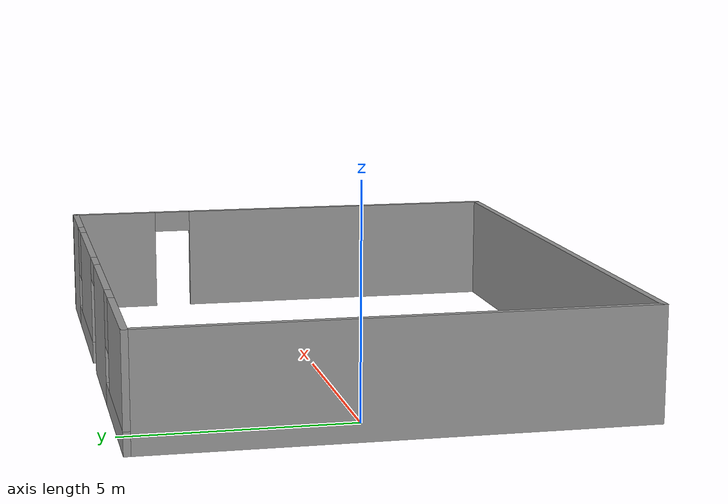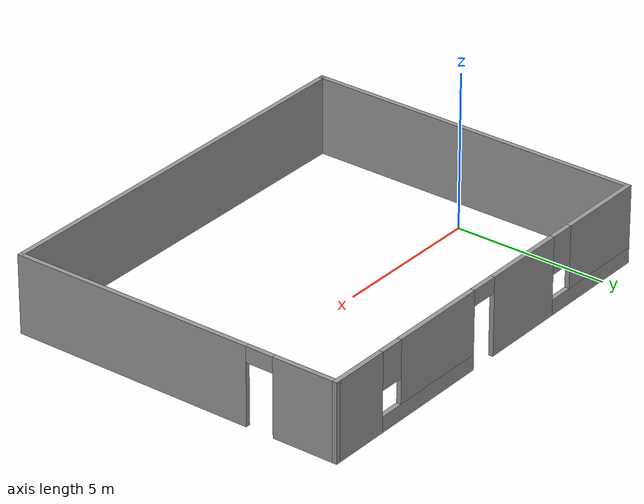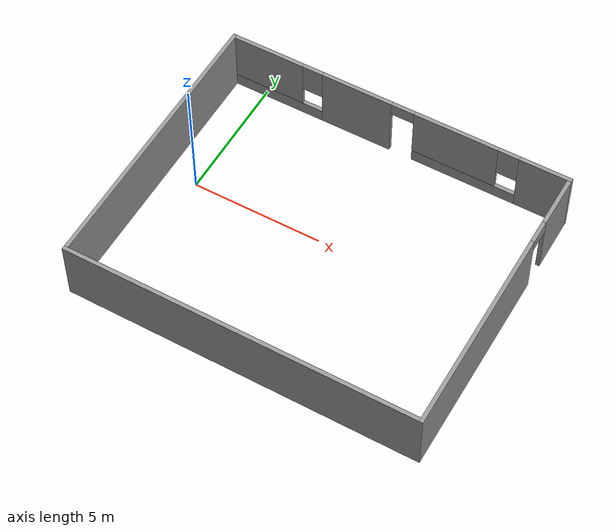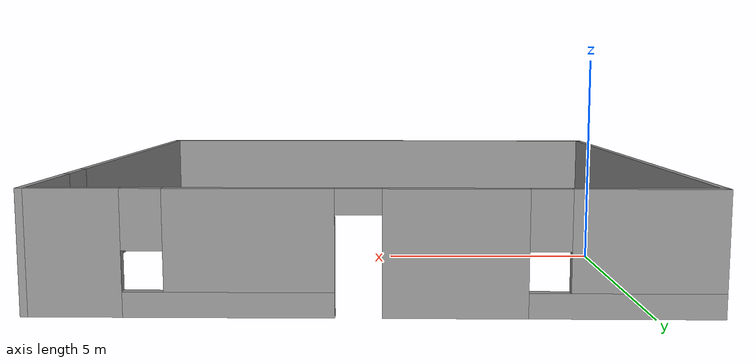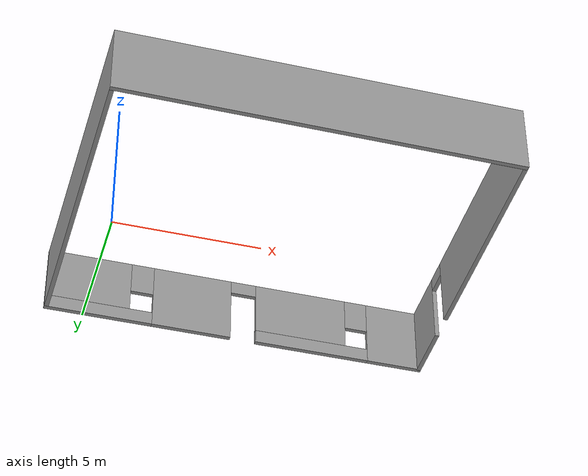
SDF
<?xml version='1.0'?>
<sdf version='1.7'>
  <model name='Multi-Door_building'>
    <pose>5.4101 -0.530281 0 0 -0 0</pose>
    <link name='Wall_5'>
      <collision name='Wall_5_Collision'>
        <geometry>
          <box>
            <size>11 0.15 2.5</size>
          </box>
        </geometry>
        <pose>0 0 1.25 0 -0 0</pose>
      </collision>
      <visual name='Wall_5_Visual'>
        <pose>0 0 1.25 0 -0 0</pose>
        <geometry>
          <box>
            <size>11 0.15 2.5</size>
          </box>
        </geometry>
        <material>
          <script>
            <uri>file://media/materials/scripts/gazebo.material</uri>
            <name>Gazebo/Grey</name>
          </script>
          <ambient>1 1 1 1</ambient>
        </material>
        <meta>
          <layer>0</layer>
        </meta>
      </visual>
      <pose>-6.675 -0 0 0 -0 -1.5708</pose>
    </link>
    <link name='Wall_6'>
      <collision name='Wall_6_Collision'>
        <geometry>
          <box>
            <size>13.5 0.15 2.5</size>
          </box>
        </geometry>
        <pose>0 0 1.25 0 -0 0</pose>
      </collision>
      <visual name='Wall_6_Visual'>
        <pose>0 0 1.25 0 -0 0</pose>
        <geometry>
          <box>
            <size>13.5 0.15 2.5</size>
          </box>
        </geometry>
        <material>
          <script>
            <uri>file://media/materials/scripts/gazebo.material</uri>
            <name>Gazebo/Grey</name>
          </script>
          <ambient>1 1 1 1</ambient>
        </material>
        <meta>
          <layer>0</layer>
        </meta>
      </visual>
      <pose>0 -5.425 0 0 -0 0</pose>
    </link>
    <link name='Wall_7'>
      <pose>6.675 -0 0 0 -0 1.5708</pose>
      <visual name='Wall_7_Visual_0'>
        <pose>-1.51662 0 1.25 0 -0 0</pose>
        <geometry>
          <box>
            <size>7.96675 0.15 2.5</size>
          </box>
        </geometry>
        <material>
          <script>
            <uri>file://media/materials/scripts/gazebo.material</uri>
            <name>Gazebo/Grey</name>
          </script>
          <ambient>1 1 1 1</ambient>
        </material>
        <meta>
          <layer>0</layer>
        </meta>
      </visual>
      <collision name='Wall_7_Collision_0'>
        <geometry>
          <box>
            <size>7.96675 0.15 2.5</size>
          </box>
        </geometry>
        <pose>-1.51662 0 1.25 0 -0 0</pose>
      </collision>
      <visual name='Wall_7_Visual_1'>
        <pose>4.43338 0 1.25 0 -0 0</pose>
        <geometry>
          <box>
            <size>2.13325 0.15 2.5</size>
          </box>
        </geometry>
        <material>
          <script>
            <uri>file://media/materials/scripts/gazebo.material</uri>
            <name>Gazebo/Grey</name>
          </script>
          <ambient>1 1 1 1</ambient>
        </material>
        <meta>
          <layer>0</layer>
        </meta>
      </visual>
      <collision name='Wall_7_Collision_1'>
        <geometry>
          <box>
            <size>2.13325 0.15 2.5</size>
          </box>
        </geometry>
        <pose>4.43338 0 1.25 0 -0 0</pose>
      </collision>
      <visual name='Wall_7_Visual_2'>
        <pose>2.91675 0 2.25 0 -0 0</pose>
        <geometry>
          <box>
            <size>0.9 0.15 0.5</size>
          </box>
        </geometry>
        <material>
          <script>
            <uri>file://media/materials/scripts/gazebo.material</uri>
            <name>Gazebo/Grey</name>
          </script>
          <ambient>1 1 1 1</ambient>
        </material>
        <meta>
          <layer>0</layer>
        </meta>
      </visual>
      <collision name='Wall_7_Collision_2'>
        <geometry>
          <box>
            <size>0.9 0.15 0.5</size>
          </box>
        </geometry>
        <pose>2.91675 0 2.25 0 -0 0</pose>
      </collision>
    </link>
    <link name='Wall_8'>
      <pose>0 5.425 0 0 -0 3.14159</pose>
      <visual name='Wall_8_Visual_0'>
        <pose>-5.75969 0 1.25 0 -0 0</pose>
        <geometry>
          <box>
            <size>1.98063 0.15 2.5</size>
          </box>
        </geometry>
        <material>
          <script>
            <uri>file://media/materials/scripts/gazebo.material</uri>
            <name>Gazebo/Grey</name>
          </script>
          <ambient>1 1 1 1</ambient>
        </material>
        <meta>
          <layer>0</layer>
        </meta>
      </visual>
      <collision name='Wall_8_Collision_0'>
        <geometry>
          <box>
            <size>1.98063 0.15 2.5</size>
          </box>
        </geometry>
        <pose>-5.75969 0 1.25 0 -0 0</pose>
      </collision>
      <visual name='Wall_8_Visual_1'>
        <pose>1.6026 0 1.25 0 -0 0</pose>
        <geometry>
          <box>
            <size>2.791 0.15 2.5</size>
          </box>
        </geometry>
        <material>
          <script>
            <uri>file://media/materials/scripts/gazebo.material</uri>
            <name>Gazebo/Grey</name>
          </script>
          <ambient>1 1 1 1</ambient>
        </material>
        <meta>
          <layer>0</layer>
        </meta>
      </visual>
      <collision name='Wall_8_Collision_1'>
        <geometry>
          <box>
            <size>2.791 0.15 2.5</size>
          </box>
        </geometry>
        <pose>1.6026 0 1.25 0 -0 0</pose>
      </collision>
      <visual name='Wall_8_Visual_2'>
        <pose>-2.73114 0 0.25 0 -0 0</pose>
        <geometry>
          <box>
            <size>4.07647 0.15 0.5</size>
          </box>
        </geometry>
        <material>
          <script>
            <uri>file://media/materials/scripts/gazebo.material</uri>
            <name>Gazebo/Grey</name>
          </script>
          <ambient>1 1 1 1</ambient>
        </material>
        <meta>
          <layer>0</layer>
        </meta>
      </visual>
      <collision name='Wall_8_Collision_2'>
        <geometry>
          <box>
            <size>4.07647 0.15 0.5</size>
          </box>
        </geometry>
        <pose>-2.73114 0 0.25 0 -0 0</pose>
      </collision>
      <visual name='Wall_8_Visual_3'>
        <pose>4.87405 0 0.25 0 -0 0</pose>
        <geometry>
          <box>
            <size>3.7519 0.15 0.5</size>
          </box>
        </geometry>
        <material>
          <script>
            <uri>file://media/materials/scripts/gazebo.material</uri>
            <name>Gazebo/Grey</name>
          </script>
          <ambient>1 1 1 1</ambient>
        </material>
        <meta>
          <layer>0</layer>
        </meta>
      </visual>
      <collision name='Wall_8_Collision_3'>
        <geometry>
          <box>
            <size>3.7519 0.15 0.5</size>
          </box>
        </geometry>
        <pose>4.87405 0 0.25 0 -0 0</pose>
      </collision>
      <visual name='Wall_8_Visual_4'>
        <pose>-2.33114 0 1.5 0 -0 0</pose>
        <geometry>
          <box>
            <size>3.27647 0.15 2</size>
          </box>
        </geometry>
        <material>
          <script>
            <uri>file://media/materials/scripts/gazebo.material</uri>
            <name>Gazebo/Grey</name>
          </script>
          <ambient>1 1 1 1</ambient>
        </material>
        <meta>
          <layer>0</layer>
        </meta>
      </visual>
      <collision name='Wall_8_Collision_4'>
        <geometry>
          <box>
            <size>3.27647 0.15 2</size>
          </box>
        </geometry>
        <pose>-2.33114 0 1.5 0 -0 0</pose>
      </collision>
      <visual name='Wall_8_Visual_5'>
        <pose>-2.33114 0 1.5 0 -0 0</pose>
        <geometry>
          <box>
            <size>3.27647 0.15 2</size>
          </box>
        </geometry>
        <material>
          <script>
            <uri>file://media/materials/scripts/gazebo.material</uri>
            <name>Gazebo/Grey</name>
          </script>
          <ambient>1 1 1 1</ambient>
        </material>
        <meta>
          <layer>0</layer>
        </meta>
      </visual>
      <collision name='Wall_8_Collision_5'>
        <geometry>
          <box>
            <size>3.27647 0.15 2</size>
          </box>
        </geometry>
        <pose>-2.33114 0 1.5 0 -0 0</pose>
      </collision>
      <visual name='Wall_8_Visual_6'>
        <pose>5.27405 0 1.5 0 -0 0</pose>
        <geometry>
          <box>
            <size>2.9519 0.15 2</size>
          </box>
        </geometry>
        <material>
          <script>
            <uri>file://media/materials/scripts/gazebo.material</uri>
            <name>Gazebo/Grey</name>
          </script>
          <ambient>1 1 1 1</ambient>
        </material>
        <meta>
          <layer>0</layer>
        </meta>
      </visual>
      <collision name='Wall_8_Collision_6'>
        <geometry>
          <box>
            <size>2.9519 0.15 2</size>
          </box>
        </geometry>
        <pose>5.27405 0 1.5 0 -0 0</pose>
      </collision>
      <visual name='Wall_8_Visual_7'>
        <pose>-4.36937 0 1.9 0 -0 0</pose>
        <geometry>
          <box>
            <size>0.8 0.15 1.2</size>
          </box>
        </geometry>
        <material>
          <script>
            <uri>file://media/materials/scripts/gazebo.material</uri>
            <name>Gazebo/Grey</name>
          </script>
          <ambient>1 1 1 1</ambient>
        </material>
        <meta>
          <layer>0</layer>
        </meta>
      </visual>
      <collision name='Wall_8_Collision_7'>
        <geometry>
          <box>
            <size>0.8 0.15 1.2</size>
          </box>
        </geometry>
        <pose>-4.36937 0 1.9 0 -0 0</pose>
      </collision>
      <visual name='Wall_8_Visual_8'>
        <pose>3.3981 0 1.9 0 -0 0</pose>
        <geometry>
          <box>
            <size>0.8 0.15 1.2</size>
          </box>
        </geometry>
        <material>
          <script>
            <uri>file://media/materials/scripts/gazebo.material</uri>
            <name>Gazebo/Grey</name>
          </script>
          <ambient>1 1 1 1</ambient>
        </material>
        <meta>
          <layer>0</layer>
        </meta>
      </visual>
      <collision name='Wall_8_Collision_8'>
        <geometry>
          <box>
            <size>0.8 0.15 1.2</size>
          </box>
        </geometry>
        <pose>3.3981 0 1.9 0 -0 0</pose>
      </collision>
      <visual name='Wall_8_Visual_9'>
        <pose>-0.242904 0 2.25 0 -0 0</pose>
        <geometry>
          <box>
            <size>0.9 0.15 0.5</size>
          </box>
        </geometry>
        <material>
          <script>
            <uri>file://media/materials/scripts/gazebo.material</uri>
            <name>Gazebo/Grey</name>
          </script>
          <ambient>1 1 1 1</ambient>
        </material>
        <meta>
          <layer>0</layer>
        </meta>
      </visual>
      <collision name='Wall_8_Collision_9'>
        <geometry>
          <box>
            <size>0.9 0.15 0.5</size>
          </box>
        </geometry>
        <pose>-0.242904 0 2.25 0 -0 0</pose>
      </collision>
      <visual name='Wall_8_Visual_10'>
        <pose>-0.242904 0 2.25 0 -0 0</pose>
        <geometry>
          <box>
            <size>0.9 0.15 0.5</size>
          </box>
        </geometry>
        <material>
          <script>
            <uri>file://media/materials/scripts/gazebo.material</uri>
            <name>Gazebo/Grey</name>
          </script>
          <ambient>1 1 1 1</ambient>
        </material>
        <meta>
          <layer>0</layer>
        </meta>
      </visual>
      <collision name='Wall_8_Collision_10'>
        <geometry>
          <box>
            <size>0.9 0.15 0.5</size>
          </box>
        </geometry>
        <pose>-0.242904 0 2.25 0 -0 0</pose>
      </collision>
    </link>
    <static>1</static>
  </model>
</sdf>
